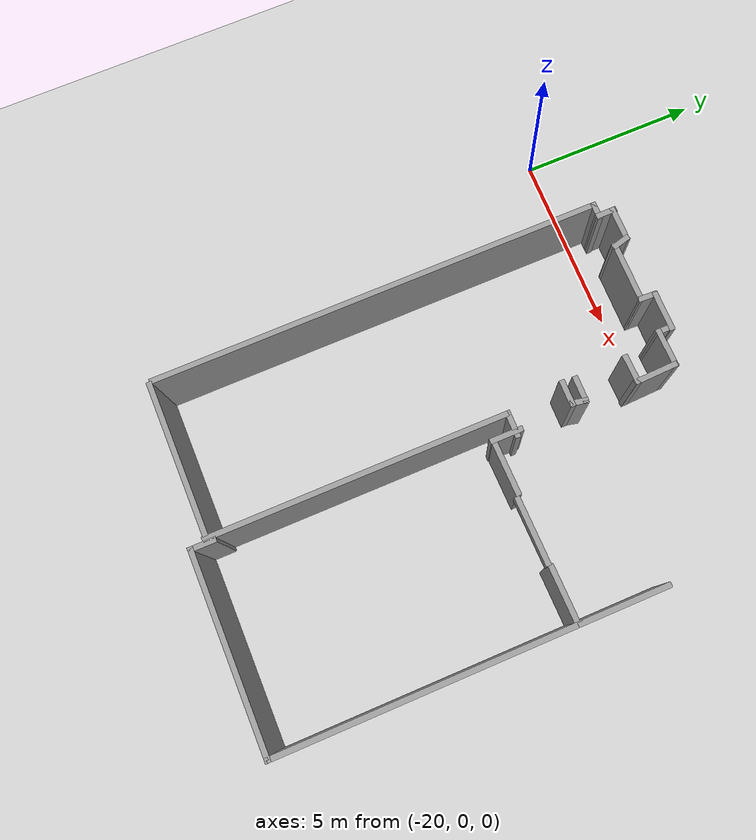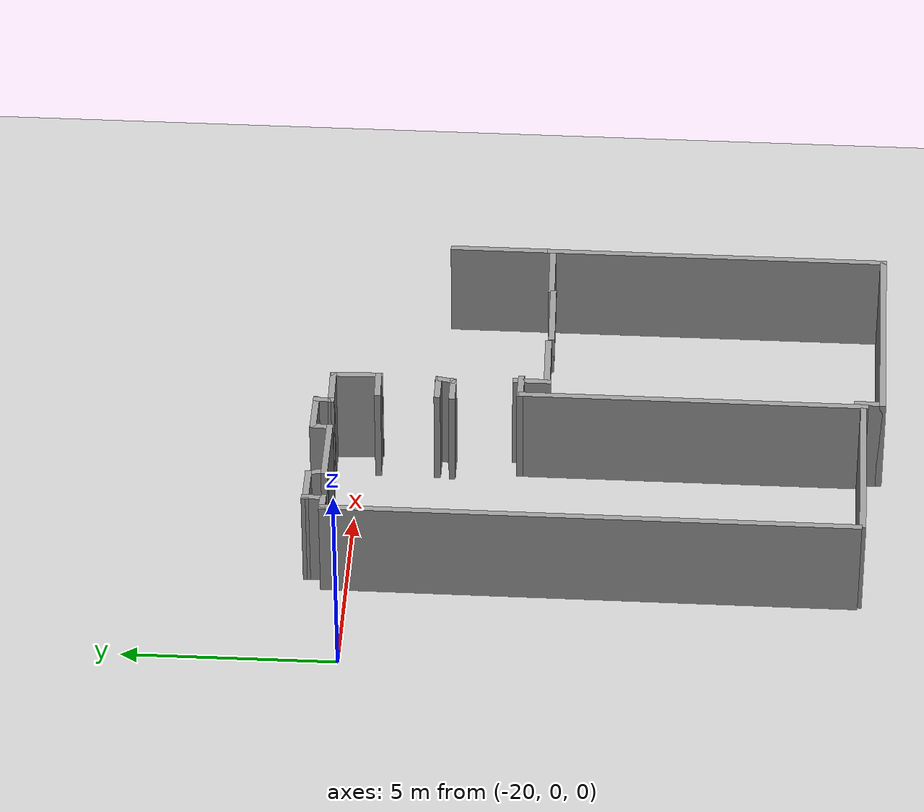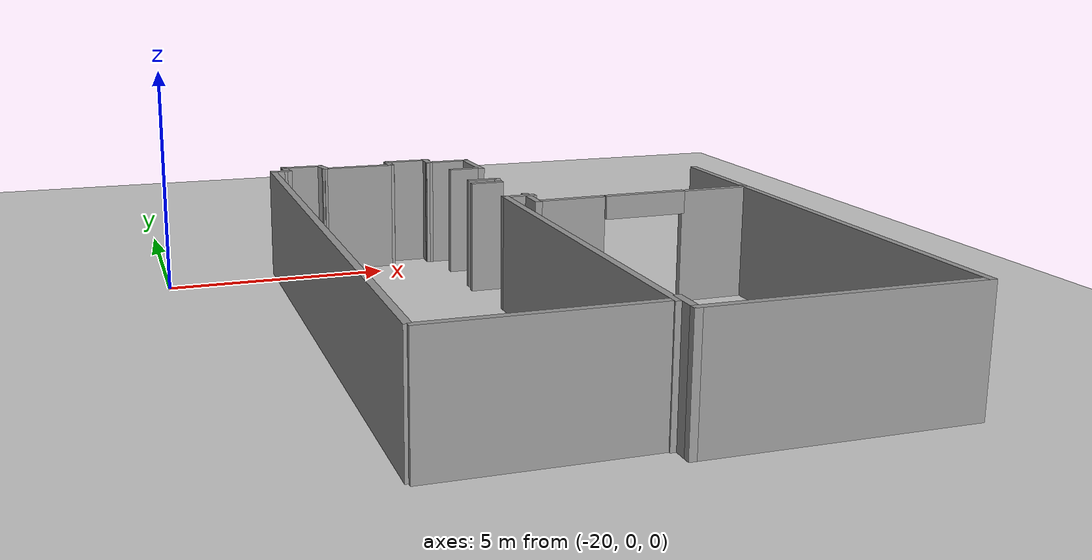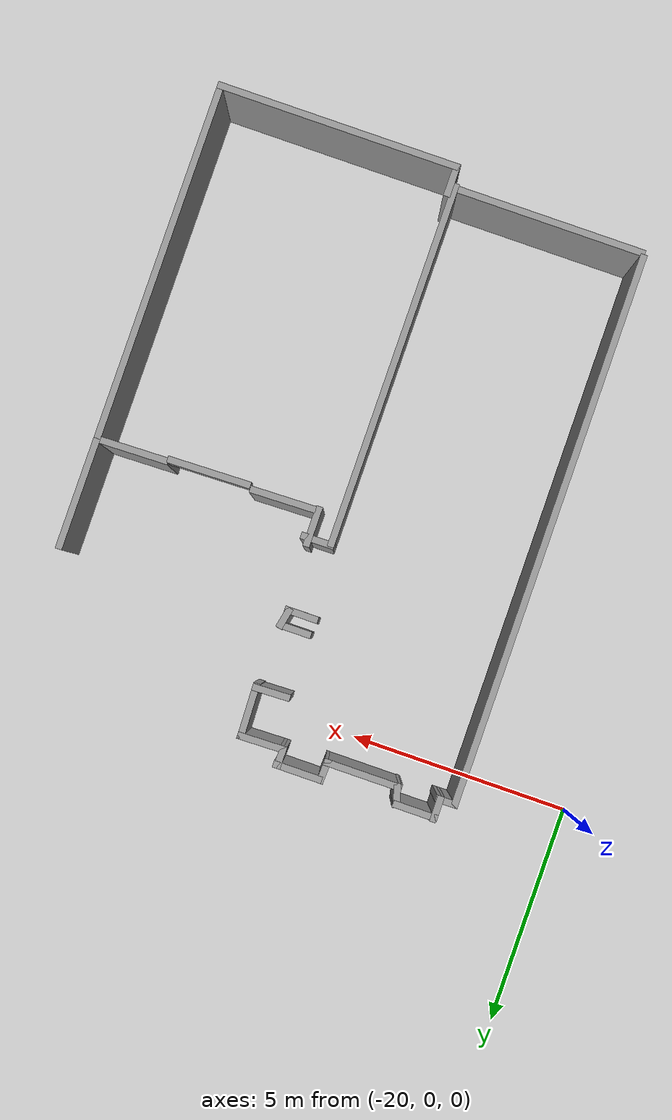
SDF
<sdf version="1.6">
 <world name="default">
  <model name="ground_plane">
   <static>1</static>
   <link name="link">
    <collision name="collision">
     <geometry><plane><normal>0 0 1</normal><size>100 100</size></plane></geometry>
     <surface>
      <contact><collide_bitmask>65535</collide_bitmask></contact>
      <friction><ode><mu>100</mu><mu2>50</mu2></ode></friction>
     </surface>
    </collision>
    <visual name="visual">
     <cast_shadows>0</cast_shadows>
     <geometry><plane><normal>0 0 1</normal><size>100 100</size></plane></geometry>
     <material>
      <script><uri>file://media/materials/scripts/gazebo.material</uri><name>Gazebo/Grey</name></script>
     </material>
    </visual>
   </link>
  </model>
  <model name="six_floor">
   <link name="Wall_0">
    <pose>-19.0386 -7.49444 0 0 -0 1.5708</pose>
    <visual name="Wall_0_Visual">
     <pose>0 0 1.25 0 -0 0</pose>
     <geometry><box><size>12.5 0.15 2.5</size></box></geometry>
     <material>
      <script><uri>file://media/materials/scripts/gazebo.material</uri><name>Gazebo/Grey</name></script>
      <ambient>1 1 1 1</ambient>
     </material>
     <meta><layer>0</layer></meta>
    </visual>
    <collision name="Wall_0_Collision">
     <pose>0 0 1.25 0 -0 0</pose>
     <geometry><box><size>12.5 0.15 2.5</size></box></geometry>
     <surface>
      <friction>
       <ode><mu>1</mu><mu2>1</mu2><fdir1>0 0 0</fdir1><slip1>0</slip1><slip2>0</slip2></ode>
       <torsional>
        <coefficient>1</coefficient>
        <patch_radius>0</patch_radius>
        <surface_radius>0</surface_radius>
        <use_patch_radius>1</use_patch_radius>
        <ode><slip>0</slip></ode>
       </torsional>
      </friction>
      <bounce><restitution_coefficient>0</restitution_coefficient><threshold>1e+06</threshold></bounce>
      <contact>
       <collide_without_contact>0</collide_without_contact>
       <collide_without_contact_bitmask>1</collide_without_contact_bitmask>
       <collide_bitmask>1</collide_bitmask>
       <ode>
        <soft_cfm>0</soft_cfm>
        <soft_erp>0.2</soft_erp>
        <kp>1e+13</kp>
        <kd>1</kd>
        <max_vel>0.01</max_vel>
        <min_depth>0</min_depth>
       </ode>
       <bullet>
        <split_impulse>1</split_impulse>
        <split_impulse_penetration_threshold>-0.01</split_impulse_penetration_threshold>
        <soft_cfm>0</soft_cfm>
        <soft_erp>0.2</soft_erp>
        <kp>1e+13</kp>
        <kd>1</kd>
       </bullet>
      </contact>
     </surface>
    </collision>
   </link>
   <link name="Wall_1">
    <pose>-18.8636 -1.31944 0 0 -0 0</pose>
    <visual name="Wall_1_Visual">
     <pose>0 0 1.25 0 -0 0</pose>
     <geometry><box><size>0.5 0.15 2.5</size></box></geometry>
     <material>
      <script><uri>file://media/materials/scripts/gazebo.material</uri><name>Gazebo/Grey</name></script>
      <ambient>1 1 1 1</ambient>
     </material>
     <meta><layer>0</layer></meta>
    </visual>
    <collision name="Wall_1_Collision">
     <pose>0 0 1.25 0 -0 0</pose>
     <geometry><box><size>0.5 0.15 2.5</size></box></geometry>
     <surface>
      <friction>
       <ode><mu>1</mu><mu2>1</mu2><fdir1>0 0 0</fdir1><slip1>0</slip1><slip2>0</slip2></ode>
       <torsional>
        <coefficient>1</coefficient>
        <patch_radius>0</patch_radius>
        <surface_radius>0</surface_radius>
        <use_patch_radius>1</use_patch_radius>
        <ode><slip>0</slip></ode>
       </torsional>
      </friction>
      <bounce><restitution_coefficient>0</restitution_coefficient><threshold>1e+06</threshold></bounce>
      <contact>
       <collide_without_contact>0</collide_without_contact>
       <collide_without_contact_bitmask>1</collide_without_contact_bitmask>
       <collide_bitmask>1</collide_bitmask>
       <ode>
        <soft_cfm>0</soft_cfm>
        <soft_erp>0.2</soft_erp>
        <kp>1e+13</kp>
        <kd>1</kd>
        <max_vel>0.01</max_vel>
        <min_depth>0</min_depth>
       </ode>
       <bullet>
        <split_impulse>1</split_impulse>
        <split_impulse_penetration_threshold>-0.01</split_impulse_penetration_threshold>
        <soft_cfm>0</soft_cfm>
        <soft_erp>0.2</soft_erp>
        <kp>1e+13</kp>
        <kd>1</kd>
       </bullet>
      </contact>
     </surface>
    </collision>
   </link>
   <link name="Wall_10">
    <pose>-14.2467 -1.76551 0 0 0 -1.53484</pose>
    <visual name="Wall_10_Visual">
     <pose>0 0 1.25 0 -0 0</pose>
     <geometry><box><size>1.22409 0.15 2.5</size></box></geometry>
     <material>
      <script><uri>file://media/materials/scripts/gazebo.material</uri><name>Gazebo/Grey</name></script>
      <ambient>1 1 1 1</ambient>
     </material>
     <meta><layer>0</layer></meta>
    </visual>
    <collision name="Wall_10_Collision">
     <pose>0 0 1.25 0 -0 0</pose>
     <geometry><box><size>1.22409 0.15 2.5</size></box></geometry>
     <surface>
      <friction>
       <ode><mu>1</mu><mu2>1</mu2><fdir1>0 0 0</fdir1><slip1>0</slip1><slip2>0</slip2></ode>
       <torsional>
        <coefficient>1</coefficient>
        <patch_radius>0</patch_radius>
        <surface_radius>0</surface_radius>
        <use_patch_radius>1</use_patch_radius>
        <ode><slip>0</slip></ode>
       </torsional>
      </friction>
      <bounce><restitution_coefficient>0</restitution_coefficient><threshold>1e+06</threshold></bounce>
      <contact>
       <collide_without_contact>0</collide_without_contact>
       <collide_without_contact_bitmask>1</collide_without_contact_bitmask>
       <collide_bitmask>1</collide_bitmask>
       <ode>
        <soft_cfm>0</soft_cfm>
        <soft_erp>0.2</soft_erp>
        <kp>1e+13</kp>
        <kd>1</kd>
        <max_vel>0.01</max_vel>
        <min_depth>0</min_depth>
       </ode>
       <bullet>
        <split_impulse>1</split_impulse>
        <split_impulse_penetration_threshold>-0.01</split_impulse_penetration_threshold>
        <soft_cfm>0</soft_cfm>
        <soft_erp>0.2</soft_erp>
        <kp>1e+13</kp>
        <kd>1</kd>
       </bullet>
      </contact>
     </surface>
    </collision>
   </link>
   <link name="Wall_12">
    <pose>-14.5731 -2.29078 0 0 0 -3.10853</pose>
    <visual name="Wall_12_Visual">
     <pose>0 0 1.25 0 -0 0</pose>
     <geometry><box><size>0.841859 0.15 2.5</size></box></geometry>
     <material>
      <script><uri>file://media/materials/scripts/gazebo.material</uri><name>Gazebo/Grey</name></script>
      <ambient>1 1 1 1</ambient>
     </material>
     <meta><layer>0</layer></meta>
    </visual>
    <collision name="Wall_12_Collision">
     <pose>0 0 1.25 0 -0 0</pose>
     <geometry><box><size>0.841859 0.15 2.5</size></box></geometry>
     <surface>
      <friction>
       <ode><mu>1</mu><mu2>1</mu2><fdir1>0 0 0</fdir1><slip1>0</slip1><slip2>0</slip2></ode>
       <torsional>
        <coefficient>1</coefficient>
        <patch_radius>0</patch_radius>
        <surface_radius>0</surface_radius>
        <use_patch_radius>1</use_patch_radius>
        <ode><slip>0</slip></ode>
       </torsional>
      </friction>
      <bounce><restitution_coefficient>0</restitution_coefficient><threshold>1e+06</threshold></bounce>
      <contact>
       <collide_without_contact>0</collide_without_contact>
       <collide_without_contact_bitmask>1</collide_without_contact_bitmask>
       <collide_bitmask>1</collide_bitmask>
       <ode>
        <soft_cfm>0</soft_cfm>
        <soft_erp>0.2</soft_erp>
        <kp>1e+13</kp>
        <kd>1</kd>
        <max_vel>0.01</max_vel>
        <min_depth>0</min_depth>
       </ode>
       <bullet>
        <split_impulse>1</split_impulse>
        <split_impulse_penetration_threshold>-0.01</split_impulse_penetration_threshold>
        <soft_cfm>0</soft_cfm>
        <soft_erp>0.2</soft_erp>
        <kp>1e+13</kp>
        <kd>1</kd>
       </bullet>
      </contact>
     </surface>
    </collision>
   </link>
   <link name="Wall_14">
    <pose>-14.3197 -3.87944 0 0 0 -1.77692</pose>
    <visual name="Wall_14_Visual">
     <pose>0 0 1.25 0 -0 0</pose>
     <geometry><box><size>0.489902 0.15 2.5</size></box></geometry>
     <material>
      <script><uri>file://media/materials/scripts/gazebo.material</uri><name>Gazebo/Grey</name></script>
      <ambient>1 1 1 1</ambient>
     </material>
     <meta><layer>0</layer></meta>
    </visual>
    <collision name="Wall_14_Collision">
     <pose>0 0 1.25 0 -0 0</pose>
     <geometry><box><size>0.489902 0.15 2.5</size></box></geometry>
     <surface>
      <friction>
       <ode><mu>1</mu><mu2>1</mu2><fdir1>0 0 0</fdir1><slip1>0</slip1><slip2>0</slip2></ode>
       <torsional>
        <coefficient>1</coefficient>
        <patch_radius>0</patch_radius>
        <surface_radius>0</surface_radius>
        <use_patch_radius>1</use_patch_radius>
        <ode><slip>0</slip></ode>
       </torsional>
      </friction>
      <bounce><restitution_coefficient>0</restitution_coefficient><threshold>1e+06</threshold></bounce>
      <contact>
       <collide_without_contact>0</collide_without_contact>
       <collide_without_contact_bitmask>1</collide_without_contact_bitmask>
       <collide_bitmask>1</collide_bitmask>
       <ode>
        <soft_cfm>0</soft_cfm>
        <soft_erp>0.2</soft_erp>
        <kp>1e+13</kp>
        <kd>1</kd>
        <max_vel>0.01</max_vel>
        <min_depth>0</min_depth>
       </ode>
       <bullet>
        <split_impulse>1</split_impulse>
        <split_impulse_penetration_threshold>-0.01</split_impulse_penetration_threshold>
        <soft_cfm>0</soft_cfm>
        <soft_erp>0.2</soft_erp>
        <kp>1e+13</kp>
        <kd>1</kd>
       </bullet>
      </contact>
     </surface>
    </collision>
   </link>
   <link name="Wall_145">
    <pose>-9.28262 -10.1662 0 0 0 -1.5708</pose>
    <visual name="Wall_145_Visual">
     <pose>0 0 1.25 0 -0 0</pose>
     <geometry><box><size>8.25 0.15 2.5</size></box></geometry>
     <material>
      <script><uri>file://media/materials/scripts/gazebo.material</uri><name>Gazebo/Grey</name></script>
      <ambient>1 1 1 1</ambient>
     </material>
     <meta><layer>0</layer></meta>
    </visual>
    <collision name="Wall_145_Collision">
     <pose>0 0 1.25 0 -0 0</pose>
     <geometry><box><size>8.25 0.15 2.5</size></box></geometry>
     <surface>
      <friction>
       <ode><mu>1</mu><mu2>1</mu2><fdir1>0 0 0</fdir1><slip1>0</slip1><slip2>0</slip2></ode>
       <torsional>
        <coefficient>1</coefficient>
        <patch_radius>0</patch_radius>
        <surface_radius>0</surface_radius>
        <use_patch_radius>1</use_patch_radius>
        <ode><slip>0</slip></ode>
       </torsional>
      </friction>
      <bounce><restitution_coefficient>0</restitution_coefficient><threshold>1e+06</threshold></bounce>
      <contact>
       <collide_without_contact>0</collide_without_contact>
       <collide_without_contact_bitmask>1</collide_without_contact_bitmask>
       <collide_bitmask>1</collide_bitmask>
       <ode>
        <soft_cfm>0</soft_cfm>
        <soft_erp>0.2</soft_erp>
        <kp>1e+13</kp>
        <kd>1</kd>
        <max_vel>0.01</max_vel>
        <min_depth>0</min_depth>
       </ode>
       <bullet>
        <split_impulse>1</split_impulse>
        <split_impulse_penetration_threshold>-0.01</split_impulse_penetration_threshold>
        <soft_cfm>0</soft_cfm>
        <soft_erp>0.2</soft_erp>
        <kp>1e+13</kp>
        <kd>1</kd>
       </bullet>
      </contact>
     </surface>
    </collision>
   </link>
   <link name="Wall_146">
    <pose>-11.9576 -14.2162 0 0 -0 3.14159</pose>
    <visual name="Wall_146_Visual">
     <pose>0 0 1.25 0 -0 0</pose>
     <geometry><box><size>5.5 0.15 2.5</size></box></geometry>
     <material>
      <script><uri>file://media/materials/scripts/gazebo.material</uri><name>Gazebo/Grey</name></script>
      <ambient>1 1 1 1</ambient>
     </material>
     <meta><layer>0</layer></meta>
    </visual>
    <collision name="Wall_146_Collision">
     <pose>0 0 1.25 0 -0 0</pose>
     <geometry><box><size>5.5 0.15 2.5</size></box></geometry>
     <surface>
      <friction>
       <ode><mu>1</mu><mu2>1</mu2><fdir1>0 0 0</fdir1><slip1>0</slip1><slip2>0</slip2></ode>
       <torsional>
        <coefficient>1</coefficient>
        <patch_radius>0</patch_radius>
        <surface_radius>0</surface_radius>
        <use_patch_radius>1</use_patch_radius>
        <ode><slip>0</slip></ode>
       </torsional>
      </friction>
      <bounce><restitution_coefficient>0</restitution_coefficient><threshold>1e+06</threshold></bounce>
      <contact>
       <collide_without_contact>0</collide_without_contact>
       <collide_without_contact_bitmask>1</collide_without_contact_bitmask>
       <collide_bitmask>1</collide_bitmask>
       <ode>
        <soft_cfm>0</soft_cfm>
        <soft_erp>0.2</soft_erp>
        <kp>1e+13</kp>
        <kd>1</kd>
        <max_vel>0.01</max_vel>
        <min_depth>0</min_depth>
       </ode>
       <bullet>
        <split_impulse>1</split_impulse>
        <split_impulse_penetration_threshold>-0.01</split_impulse_penetration_threshold>
        <soft_cfm>0</soft_cfm>
        <soft_erp>0.2</soft_erp>
        <kp>1e+13</kp>
        <kd>1</kd>
       </bullet>
      </contact>
     </surface>
    </collision>
   </link>
   <link name="Wall_147">
    <pose>-14.6326 -13.9162 0 0 -0 1.5708</pose>
    <visual name="Wall_147_Visual">
     <pose>0 0 1.25 0 -0 0</pose>
     <geometry><box><size>0.75 0.15 2.5</size></box></geometry>
     <material>
      <script><uri>file://media/materials/scripts/gazebo.material</uri><name>Gazebo/Grey</name></script>
      <ambient>1 1 1 1</ambient>
     </material>
     <meta><layer>0</layer></meta>
    </visual>
    <collision name="Wall_147_Collision">
     <pose>0 0 1.25 0 -0 0</pose>
     <geometry><box><size>0.75 0.15 2.5</size></box></geometry>
     <surface>
      <friction>
       <ode><mu>1</mu><mu2>1</mu2><fdir1>0 0 0</fdir1><slip1>0</slip1><slip2>0</slip2></ode>
       <torsional>
        <coefficient>1</coefficient>
        <patch_radius>0</patch_radius>
        <surface_radius>0</surface_radius>
        <use_patch_radius>1</use_patch_radius>
        <ode><slip>0</slip></ode>
       </torsional>
      </friction>
      <bounce><restitution_coefficient>0</restitution_coefficient><threshold>1e+06</threshold></bounce>
      <contact>
       <collide_without_contact>0</collide_without_contact>
       <collide_without_contact_bitmask>1</collide_without_contact_bitmask>
       <collide_bitmask>1</collide_bitmask>
       <ode>
        <soft_cfm>0</soft_cfm>
        <soft_erp>0.2</soft_erp>
        <kp>1e+13</kp>
        <kd>1</kd>
        <max_vel>0.01</max_vel>
        <min_depth>0</min_depth>
       </ode>
       <bullet>
        <split_impulse>1</split_impulse>
        <split_impulse_penetration_threshold>-0.01</split_impulse_penetration_threshold>
        <soft_cfm>0</soft_cfm>
        <soft_erp>0.2</soft_erp>
        <kp>1e+13</kp>
        <kd>1</kd>
       </bullet>
      </contact>
     </surface>
    </collision>
   </link>
   <link name="Wall_16">
    <pose>-14.6022 -3.71309 0 0 -0 0</pose>
    <visual name="Wall_16_Visual">
     <pose>0 0 1.25 0 -0 0</pose>
     <geometry><box><size>0.75 0.15 2.5</size></box></geometry>
     <material>
      <script><uri>file://media/materials/scripts/gazebo.material</uri><name>Gazebo/Grey</name></script>
      <ambient>1 1 1 1</ambient>
     </material>
     <meta><layer>0</layer></meta>
    </visual>
    <collision name="Wall_16_Collision">
     <pose>0 0 1.25 0 -0 0</pose>
     <geometry><box><size>0.75 0.15 2.5</size></box></geometry>
     <surface>
      <friction>
       <ode><mu>1</mu><mu2>1</mu2><fdir1>0 0 0</fdir1><slip1>0</slip1><slip2>0</slip2></ode>
       <torsional>
        <coefficient>1</coefficient>
        <patch_radius>0</patch_radius>
        <surface_radius>0</surface_radius>
        <use_patch_radius>1</use_patch_radius>
        <ode><slip>0</slip></ode>
       </torsional>
      </friction>
      <bounce><restitution_coefficient>0</restitution_coefficient><threshold>1e+06</threshold></bounce>
      <contact>
       <collide_without_contact>0</collide_without_contact>
       <collide_without_contact_bitmask>1</collide_without_contact_bitmask>
       <collide_bitmask>1</collide_bitmask>
       <ode>
        <soft_cfm>0</soft_cfm>
        <soft_erp>0.2</soft_erp>
        <kp>1e+13</kp>
        <kd>1</kd>
        <max_vel>0.01</max_vel>
        <min_depth>0</min_depth>
       </ode>
       <bullet>
        <split_impulse>1</split_impulse>
        <split_impulse_penetration_threshold>-0.01</split_impulse_penetration_threshold>
        <soft_cfm>0</soft_cfm>
        <soft_erp>0.2</soft_erp>
        <kp>1e+13</kp>
        <kd>1</kd>
       </bullet>
      </contact>
     </surface>
    </collision>
   </link>
   <link name="Wall_18">
    <pose>-14.6372 -4.06309 0 0 -0 0</pose>
    <visual name="Wall_18_Visual">
     <pose>0 0 1.25 0 -0 0</pose>
     <geometry><box><size>0.75 0.15 2.5</size></box></geometry>
     <material>
      <script><uri>file://media/materials/scripts/gazebo.material</uri><name>Gazebo/Grey</name></script>
      <ambient>1 1 1 1</ambient>
     </material>
     <meta><layer>0</layer></meta>
    </visual>
    <collision name="Wall_18_Collision">
     <pose>0 0 1.25 0 -0 0</pose>
     <geometry><box><size>0.75 0.15 2.5</size></box></geometry>
     <surface>
      <friction>
       <ode><mu>1</mu><mu2>1</mu2><fdir1>0 0 0</fdir1><slip1>0</slip1><slip2>0</slip2></ode>
       <torsional>
        <coefficient>1</coefficient>
        <patch_radius>0</patch_radius>
        <surface_radius>0</surface_radius>
        <use_patch_radius>1</use_patch_radius>
        <ode><slip>0</slip></ode>
       </torsional>
      </friction>
      <bounce><restitution_coefficient>0</restitution_coefficient><threshold>1e+06</threshold></bounce>
      <contact>
       <collide_without_contact>0</collide_without_contact>
       <collide_without_contact_bitmask>1</collide_without_contact_bitmask>
       <collide_bitmask>1</collide_bitmask>
       <ode>
        <soft_cfm>0</soft_cfm>
        <soft_erp>0.2</soft_erp>
        <kp>1e+13</kp>
        <kd>1</kd>
        <max_vel>0.01</max_vel>
        <min_depth>0</min_depth>
       </ode>
       <bullet>
        <split_impulse>1</split_impulse>
        <split_impulse_penetration_threshold>-0.01</split_impulse_penetration_threshold>
        <soft_cfm>0</soft_cfm>
        <soft_erp>0.2</soft_erp>
        <kp>1e+13</kp>
        <kd>1</kd>
       </bullet>
      </contact>
     </surface>
    </collision>
   </link>
   <link name="Wall_2">
    <pose>-18.7118 -1.10466 0 0 -0 1.57237</pose>
    <visual name="Wall_2_Visual">
     <pose>0 0 1.25 0 -0 0</pose>
     <geometry><box><size>0.579555 0.15 2.5</size></box></geometry>
     <material>
      <script><uri>file://media/materials/scripts/gazebo.material</uri><name>Gazebo/Grey</name></script>
      <ambient>1 1 1 1</ambient>
     </material>
     <meta><layer>0</layer></meta>
    </visual>
    <collision name="Wall_2_Collision">
     <pose>0 0 1.25 0 -0 0</pose>
     <geometry><box><size>0.579555 0.15 2.5</size></box></geometry>
     <surface>
      <friction>
       <ode><mu>1</mu><mu2>1</mu2><fdir1>0 0 0</fdir1><slip1>0</slip1><slip2>0</slip2></ode>
       <torsional>
        <coefficient>1</coefficient>
        <patch_radius>0</patch_radius>
        <surface_radius>0</surface_radius>
        <use_patch_radius>1</use_patch_radius>
        <ode><slip>0</slip></ode>
       </torsional>
      </friction>
      <bounce><restitution_coefficient>0</restitution_coefficient><threshold>1e+06</threshold></bounce>
      <contact>
       <collide_without_contact>0</collide_without_contact>
       <collide_without_contact_bitmask>1</collide_without_contact_bitmask>
       <collide_bitmask>1</collide_bitmask>
       <ode>
        <soft_cfm>0</soft_cfm>
        <soft_erp>0.2</soft_erp>
        <kp>1e+13</kp>
        <kd>1</kd>
        <max_vel>0.01</max_vel>
        <min_depth>0</min_depth>
       </ode>
       <bullet>
        <split_impulse>1</split_impulse>
        <split_impulse_penetration_threshold>-0.01</split_impulse_penetration_threshold>
        <soft_cfm>0</soft_cfm>
        <soft_erp>0.2</soft_erp>
        <kp>1e+13</kp>
        <kd>1</kd>
       </bullet>
      </contact>
     </surface>
    </collision>
   </link>
   <link name="Wall_21">
    <pose>-14.2482 -5.9183 0 0 0 -1.5708</pose>
    <visual name="Wall_21_Visual">
     <pose>0 0 1.25 0 -0 0</pose>
     <geometry><box><size>0.908696 0.15 2.5</size></box></geometry>
     <material>
      <script><uri>file://media/materials/scripts/gazebo.material</uri><name>Gazebo/Grey</name></script>
      <ambient>1 1 1 1</ambient>
     </material>
     <meta><layer>0</layer></meta>
    </visual>
    <collision name="Wall_21_Collision">
     <pose>0 0 1.25 0 -0 0</pose>
     <geometry><box><size>0.908696 0.15 2.5</size></box></geometry>
     <surface>
      <friction>
       <ode><mu>1</mu><mu2>1</mu2><fdir1>0 0 0</fdir1><slip1>0</slip1><slip2>0</slip2></ode>
       <torsional>
        <coefficient>1</coefficient>
        <patch_radius>0</patch_radius>
        <surface_radius>0</surface_radius>
        <use_patch_radius>1</use_patch_radius>
        <ode><slip>0</slip></ode>
       </torsional>
      </friction>
      <bounce><restitution_coefficient>0</restitution_coefficient><threshold>1e+06</threshold></bounce>
      <contact>
       <collide_without_contact>0</collide_without_contact>
       <collide_without_contact_bitmask>1</collide_without_contact_bitmask>
       <collide_bitmask>1</collide_bitmask>
       <ode>
        <soft_cfm>0</soft_cfm>
        <soft_erp>0.2</soft_erp>
        <kp>1e+13</kp>
        <kd>1</kd>
        <max_vel>0.01</max_vel>
        <min_depth>0</min_depth>
       </ode>
       <bullet>
        <split_impulse>1</split_impulse>
        <split_impulse_penetration_threshold>-0.01</split_impulse_penetration_threshold>
        <soft_cfm>0</soft_cfm>
        <soft_erp>0.2</soft_erp>
        <kp>1e+13</kp>
        <kd>1</kd>
       </bullet>
      </contact>
     </surface>
    </collision>
   </link>
   <link name="Wall_23">
    <pose>-14.4453 -5.66602 0 0 -0 3.14159</pose>
    <visual name="Wall_23_Visual">
     <pose>0 0 1.25 0 -0 0</pose>
     <geometry><box><size>0.75 0.15 2.5</size></box></geometry>
     <material>
      <script><uri>file://media/materials/scripts/gazebo.material</uri><name>Gazebo/Grey</name></script>
      <ambient>1 1 1 1</ambient>
     </material>
     <meta><layer>0</layer></meta>
    </visual>
    <collision name="Wall_23_Collision">
     <pose>0 0 1.25 0 -0 0</pose>
     <geometry><box><size>0.75 0.15 2.5</size></box></geometry>
     <surface>
      <friction>
       <ode><mu>1</mu><mu2>1</mu2><fdir1>0 0 0</fdir1><slip1>0</slip1><slip2>0</slip2></ode>
       <torsional>
        <coefficient>1</coefficient>
        <patch_radius>0</patch_radius>
        <surface_radius>0</surface_radius>
        <use_patch_radius>1</use_patch_radius>
        <ode><slip>0</slip></ode>
       </torsional>
      </friction>
      <bounce><restitution_coefficient>0</restitution_coefficient><threshold>1e+06</threshold></bounce>
      <contact>
       <collide_without_contact>0</collide_without_contact>
       <collide_without_contact_bitmask>1</collide_without_contact_bitmask>
       <collide_bitmask>1</collide_bitmask>
       <ode>
        <soft_cfm>0</soft_cfm>
        <soft_erp>0.2</soft_erp>
        <kp>1e+13</kp>
        <kd>1</kd>
        <max_vel>0.01</max_vel>
        <min_depth>0</min_depth>
       </ode>
       <bullet>
        <split_impulse>1</split_impulse>
        <split_impulse_penetration_threshold>-0.01</split_impulse_penetration_threshold>
        <soft_cfm>0</soft_cfm>
        <soft_erp>0.2</soft_erp>
        <kp>1e+13</kp>
        <kd>1</kd>
       </bullet>
      </contact>
     </surface>
    </collision>
   </link>
   <link name="Wall_28">
    <pose>-14.7453 -9.7508 0 0 0 -1.5708</pose>
    <visual name="Wall_28_Visual">
     <pose>0 0 1.25 0 -0 0</pose>
     <geometry><box><size>8.25 0.15 2.5</size></box></geometry>
     <material>
      <script><uri>file://media/materials/scripts/gazebo.material</uri><name>Gazebo/Grey</name></script>
      <ambient>1 1 1 1</ambient>
     </material>
     <meta><layer>0</layer></meta>
    </visual>
    <collision name="Wall_28_Collision">
     <pose>0 0 1.25 0 -0 0</pose>
     <geometry><box><size>8.25 0.15 2.5</size></box></geometry>
     <surface>
      <friction>
       <ode><mu>1</mu><mu2>1</mu2><fdir1>0 0 0</fdir1><slip1>0</slip1><slip2>0</slip2></ode>
       <torsional>
        <coefficient>1</coefficient>
        <patch_radius>0</patch_radius>
        <surface_radius>0</surface_radius>
        <use_patch_radius>1</use_patch_radius>
        <ode><slip>0</slip></ode>
       </torsional>
      </friction>
      <bounce><restitution_coefficient>0</restitution_coefficient><threshold>1e+06</threshold></bounce>
      <contact>
       <collide_without_contact>0</collide_without_contact>
       <collide_without_contact_bitmask>1</collide_without_contact_bitmask>
       <collide_bitmask>1</collide_bitmask>
       <ode>
        <soft_cfm>0</soft_cfm>
        <soft_erp>0.2</soft_erp>
        <kp>1e+13</kp>
        <kd>1</kd>
        <max_vel>0.01</max_vel>
        <min_depth>0</min_depth>
       </ode>
       <bullet>
        <split_impulse>1</split_impulse>
        <split_impulse_penetration_threshold>-0.01</split_impulse_penetration_threshold>
        <soft_cfm>0</soft_cfm>
        <soft_erp>0.2</soft_erp>
        <kp>1e+13</kp>
        <kd>1</kd>
       </bullet>
      </contact>
     </surface>
    </collision>
   </link>
   <link name="Wall_3">
    <pose>-18.2871 -0.912757 0 0 -0 0</pose>
    <visual name="Wall_3_Visual">
     <pose>0 0 1.25 0 -0 0</pose>
     <geometry><box><size>1 0.15 2.5</size></box></geometry>
     <material>
      <script><uri>file://media/materials/scripts/gazebo.material</uri><name>Gazebo/Grey</name></script>
      <ambient>1 1 1 1</ambient>
     </material>
     <meta><layer>0</layer></meta>
    </visual>
    <collision name="Wall_3_Collision">
     <pose>0 0 1.25 0 -0 0</pose>
     <geometry><box><size>1 0.15 2.5</size></box></geometry>
     <surface>
      <friction>
       <ode><mu>1</mu><mu2>1</mu2><fdir1>0 0 0</fdir1><slip1>0</slip1><slip2>0</slip2></ode>
       <torsional>
        <coefficient>1</coefficient>
        <patch_radius>0</patch_radius>
        <surface_radius>0</surface_radius>
        <use_patch_radius>1</use_patch_radius>
        <ode><slip>0</slip></ode>
       </torsional>
      </friction>
      <bounce><restitution_coefficient>0</restitution_coefficient><threshold>1e+06</threshold></bounce>
      <contact>
       <collide_without_contact>0</collide_without_contact>
       <collide_without_contact_bitmask>1</collide_without_contact_bitmask>
       <collide_bitmask>1</collide_bitmask>
       <ode>
        <soft_cfm>0</soft_cfm>
        <soft_erp>0.2</soft_erp>
        <kp>1e+13</kp>
        <kd>1</kd>
        <max_vel>0.01</max_vel>
        <min_depth>0</min_depth>
       </ode>
       <bullet>
        <split_impulse>1</split_impulse>
        <split_impulse_penetration_threshold>-0.01</split_impulse_penetration_threshold>
        <soft_cfm>0</soft_cfm>
        <soft_erp>0.2</soft_erp>
        <kp>1e+13</kp>
        <kd>1</kd>
       </bullet>
      </contact>
     </surface>
    </collision>
   </link>
   <link name="Wall_31">
    <pose>-16.9248 -13.7645 0 0 -0 3.14159</pose>
    <visual name="Wall_31_Visual">
     <pose>0 0 1.25 0 -0 0</pose>
     <geometry><box><size>4.25 0.15 2.5</size></box></geometry>
     <material>
      <script><uri>file://media/materials/scripts/gazebo.material</uri><name>Gazebo/Grey</name></script>
      <ambient>1 1 1 1</ambient>
     </material>
     <meta><layer>0</layer></meta>
    </visual>
    <collision name="Wall_31_Collision">
     <pose>0 0 1.25 0 -0 0</pose>
     <geometry><box><size>4.25 0.15 2.5</size></box></geometry>
     <surface>
      <friction>
       <ode><mu>1</mu><mu2>1</mu2><fdir1>0 0 0</fdir1><slip1>0</slip1><slip2>0</slip2></ode>
       <torsional>
        <coefficient>1</coefficient>
        <patch_radius>0</patch_radius>
        <surface_radius>0</surface_radius>
        <use_patch_radius>1</use_patch_radius>
        <ode><slip>0</slip></ode>
       </torsional>
      </friction>
      <bounce><restitution_coefficient>0</restitution_coefficient><threshold>1e+06</threshold></bounce>
      <contact>
       <collide_without_contact>0</collide_without_contact>
       <collide_without_contact_bitmask>1</collide_without_contact_bitmask>
       <collide_bitmask>1</collide_bitmask>
       <ode>
        <soft_cfm>0</soft_cfm>
        <soft_erp>0.2</soft_erp>
        <kp>1e+13</kp>
        <kd>1</kd>
        <max_vel>0.01</max_vel>
        <min_depth>0</min_depth>
       </ode>
       <bullet>
        <split_impulse>1</split_impulse>
        <split_impulse_penetration_threshold>-0.01</split_impulse_penetration_threshold>
        <soft_cfm>0</soft_cfm>
        <soft_erp>0.2</soft_erp>
        <kp>1e+13</kp>
        <kd>1</kd>
       </bullet>
      </contact>
     </surface>
    </collision>
   </link>
   <link name="Wall_4">
    <pose>-17.8138 -1.09366 0 0 0 -1.30992</pose>
    <visual name="Wall_4_Visual">
     <pose>0 0 1.25 0 -0 0</pose>
     <geometry><box><size>0.524468 0.15 2.5</size></box></geometry>
     <material>
      <script><uri>file://media/materials/scripts/gazebo.material</uri><name>Gazebo/Grey</name></script>
      <ambient>1 1 1 1</ambient>
     </material>
     <meta><layer>0</layer></meta>
    </visual>
    <collision name="Wall_4_Collision">
     <pose>0 0 1.25 0 -0 0</pose>
     <geometry><box><size>0.524468 0.15 2.5</size></box></geometry>
     <surface>
      <friction>
       <ode><mu>1</mu><mu2>1</mu2><fdir1>0 0 0</fdir1><slip1>0</slip1><slip2>0</slip2></ode>
       <torsional>
        <coefficient>1</coefficient>
        <patch_radius>0</patch_radius>
        <surface_radius>0</surface_radius>
        <use_patch_radius>1</use_patch_radius>
        <ode><slip>0</slip></ode>
       </torsional>
      </friction>
      <bounce><restitution_coefficient>0</restitution_coefficient><threshold>1e+06</threshold></bounce>
      <contact>
       <collide_without_contact>0</collide_without_contact>
       <collide_without_contact_bitmask>1</collide_without_contact_bitmask>
       <collide_bitmask>1</collide_bitmask>
       <ode>
        <soft_cfm>0</soft_cfm>
        <soft_erp>0.2</soft_erp>
        <kp>1e+13</kp>
        <kd>1</kd>
        <max_vel>0.01</max_vel>
        <min_depth>0</min_depth>
       </ode>
       <bullet>
        <split_impulse>1</split_impulse>
        <split_impulse_penetration_threshold>-0.01</split_impulse_penetration_threshold>
        <soft_cfm>0</soft_cfm>
        <soft_erp>0.2</soft_erp>
        <kp>1e+13</kp>
        <kd>1</kd>
       </bullet>
      </contact>
     </surface>
    </collision>
   </link>
   <link name="Wall_5">
    <pose>-16.9884 -1.27455 0 0 -0 0</pose>
    <visual name="Wall_5_Visual">
     <pose>0 0 1.25 0 -0 0</pose>
     <geometry><box><size>1.75 0.15 2.5</size></box></geometry>
     <material>
      <script><uri>file://media/materials/scripts/gazebo.material</uri><name>Gazebo/Grey</name></script>
      <ambient>1 1 1 1</ambient>
     </material>
     <meta><layer>0</layer></meta>
    </visual>
    <collision name="Wall_5_Collision">
     <pose>0 0 1.25 0 -0 0</pose>
     <geometry><box><size>1.75 0.15 2.5</size></box></geometry>
     <surface>
      <friction>
       <ode><mu>1</mu><mu2>1</mu2><fdir1>0 0 0</fdir1><slip1>0</slip1><slip2>0</slip2></ode>
       <torsional>
        <coefficient>1</coefficient>
        <patch_radius>0</patch_radius>
        <surface_radius>0</surface_radius>
        <use_patch_radius>1</use_patch_radius>
        <ode><slip>0</slip></ode>
       </torsional>
      </friction>
      <bounce><restitution_coefficient>0</restitution_coefficient><threshold>1e+06</threshold></bounce>
      <contact>
       <collide_without_contact>0</collide_without_contact>
       <collide_without_contact_bitmask>1</collide_without_contact_bitmask>
       <collide_bitmask>1</collide_bitmask>
       <ode>
        <soft_cfm>0</soft_cfm>
        <soft_erp>0.2</soft_erp>
        <kp>1e+13</kp>
        <kd>1</kd>
        <max_vel>0.01</max_vel>
        <min_depth>0</min_depth>
       </ode>
       <bullet>
        <split_impulse>1</split_impulse>
        <split_impulse_penetration_threshold>-0.01</split_impulse_penetration_threshold>
        <soft_cfm>0</soft_cfm>
        <soft_erp>0.2</soft_erp>
        <kp>1e+13</kp>
        <kd>1</kd>
       </bullet>
      </contact>
     </surface>
    </collision>
   </link>
   <link name="Wall_6">
    <pose>-16.1801 -1.07668 0 0 -0 1.52891</pose>
    <visual name="Wall_6_Visual">
     <pose>0 0 1.25 0 -0 0</pose>
     <geometry><box><size>0.546088 0.15 2.5</size></box></geometry>
     <material>
      <script><uri>file://media/materials/scripts/gazebo.material</uri><name>Gazebo/Grey</name></script>
      <ambient>1 1 1 1</ambient>
     </material>
     <meta><layer>0</layer></meta>
    </visual>
    <collision name="Wall_6_Collision">
     <pose>0 0 1.25 0 -0 0</pose>
     <geometry><box><size>0.546088 0.15 2.5</size></box></geometry>
     <surface>
      <friction>
       <ode><mu>1</mu><mu2>1</mu2><fdir1>0 0 0</fdir1><slip1>0</slip1><slip2>0</slip2></ode>
       <torsional>
        <coefficient>1</coefficient>
        <patch_radius>0</patch_radius>
        <surface_radius>0</surface_radius>
        <use_patch_radius>1</use_patch_radius>
        <ode><slip>0</slip></ode>
       </torsional>
      </friction>
      <bounce><restitution_coefficient>0</restitution_coefficient><threshold>1e+06</threshold></bounce>
      <contact>
       <collide_without_contact>0</collide_without_contact>
       <collide_without_contact_bitmask>1</collide_without_contact_bitmask>
       <collide_bitmask>1</collide_bitmask>
       <ode>
        <soft_cfm>0</soft_cfm>
        <soft_erp>0.2</soft_erp>
        <kp>1e+13</kp>
        <kd>1</kd>
        <max_vel>0.01</max_vel>
        <min_depth>0</min_depth>
       </ode>
       <bullet>
        <split_impulse>1</split_impulse>
        <split_impulse_penetration_threshold>-0.01</split_impulse_penetration_threshold>
        <soft_cfm>0</soft_cfm>
        <soft_erp>0.2</soft_erp>
        <kp>1e+13</kp>
        <kd>1</kd>
       </bullet>
      </contact>
     </surface>
    </collision>
   </link>
   <link name="Wall_7">
    <pose>-15.6668 -0.878814 0 0 -0 0</pose>
    <visual name="Wall_7_Visual">
     <pose>0 0 1.25 0 -0 0</pose>
     <geometry><box><size>1.11435 0.15 2.5</size></box></geometry>
     <material>
      <script><uri>file://media/materials/scripts/gazebo.material</uri><name>Gazebo/Grey</name></script>
      <ambient>1 1 1 1</ambient>
     </material>
     <meta><layer>0</layer></meta>
    </visual>
    <collision name="Wall_7_Collision">
     <pose>0 0 1.25 0 -0 0</pose>
     <geometry><box><size>1.11435 0.15 2.5</size></box></geometry>
     <surface>
      <friction>
       <ode><mu>1</mu><mu2>1</mu2><fdir1>0 0 0</fdir1><slip1>0</slip1><slip2>0</slip2></ode>
       <torsional>
        <coefficient>1</coefficient>
        <patch_radius>0</patch_radius>
        <surface_radius>0</surface_radius>
        <use_patch_radius>1</use_patch_radius>
        <ode><slip>0</slip></ode>
       </torsional>
      </friction>
      <bounce><restitution_coefficient>0</restitution_coefficient><threshold>1e+06</threshold></bounce>
      <contact>
       <collide_without_contact>0</collide_without_contact>
       <collide_without_contact_bitmask>1</collide_without_contact_bitmask>
       <collide_bitmask>1</collide_bitmask>
       <ode>
        <soft_cfm>0</soft_cfm>
        <soft_erp>0.2</soft_erp>
        <kp>1e+13</kp>
        <kd>1</kd>
        <max_vel>0.01</max_vel>
        <min_depth>0</min_depth>
       </ode>
       <bullet>
        <split_impulse>1</split_impulse>
        <split_impulse_penetration_threshold>-0.01</split_impulse_penetration_threshold>
        <soft_cfm>0</soft_cfm>
        <soft_erp>0.2</soft_erp>
        <kp>1e+13</kp>
        <kd>1</kd>
       </bullet>
      </contact>
     </surface>
    </collision>
   </link>
   <link name="Wall_8">
    <pose>-15.2075 -1.05381 0 0 0 -1.5708</pose>
    <visual name="Wall_8_Visual">
     <pose>0 0 1.25 0 -0 0</pose>
     <geometry><box><size>0.5 0.15 2.5</size></box></geometry>
     <material>
      <script><uri>file://media/materials/scripts/gazebo.material</uri><name>Gazebo/Grey</name></script>
      <ambient>1 1 1 1</ambient>
     </material>
     <meta><layer>0</layer></meta>
    </visual>
    <collision name="Wall_8_Collision">
     <pose>0 0 1.25 0 -0 0</pose>
     <geometry><box><size>0.5 0.15 2.5</size></box></geometry>
     <surface>
      <friction>
       <ode><mu>1</mu><mu2>1</mu2><fdir1>0 0 0</fdir1><slip1>0</slip1><slip2>0</slip2></ode>
       <torsional>
        <coefficient>1</coefficient>
        <patch_radius>0</patch_radius>
        <surface_radius>0</surface_radius>
        <use_patch_radius>1</use_patch_radius>
        <ode><slip>0</slip></ode>
       </torsional>
      </friction>
      <bounce><restitution_coefficient>0</restitution_coefficient><threshold>1e+06</threshold></bounce>
      <contact>
       <collide_without_contact>0</collide_without_contact>
       <collide_without_contact_bitmask>1</collide_without_contact_bitmask>
       <collide_bitmask>1</collide_bitmask>
       <ode>
        <soft_cfm>0</soft_cfm>
        <soft_erp>0.2</soft_erp>
        <kp>1e+13</kp>
        <kd>1</kd>
        <max_vel>0.01</max_vel>
        <min_depth>0</min_depth>
       </ode>
       <bullet>
        <split_impulse>1</split_impulse>
        <split_impulse_penetration_threshold>-0.01</split_impulse_penetration_threshold>
        <soft_cfm>0</soft_cfm>
        <soft_erp>0.2</soft_erp>
        <kp>1e+13</kp>
        <kd>1</kd>
       </bullet>
      </contact>
     </surface>
    </collision>
   </link>
   <link name="Wall_9">
    <pose>-14.7367 -1.21738 0 0 -0 0.024287</pose>
    <visual name="Wall_9_Visual">
     <pose>0 0 1.25 0 -0 0</pose>
     <geometry><box><size>1.09176 0.15 2.5</size></box></geometry>
     <material>
      <script><uri>file://media/materials/scripts/gazebo.material</uri><name>Gazebo/Grey</name></script>
      <ambient>1 1 1 1</ambient>
     </material>
     <meta><layer>0</layer></meta>
    </visual>
    <collision name="Wall_9_Collision">
     <pose>0 0 1.25 0 -0 0</pose>
     <geometry><box><size>1.09176 0.15 2.5</size></box></geometry>
     <surface>
      <friction>
       <ode><mu>1</mu><mu2>1</mu2><fdir1>0 0 0</fdir1><slip1>0</slip1><slip2>0</slip2></ode>
       <torsional>
        <coefficient>1</coefficient>
        <patch_radius>0</patch_radius>
        <surface_radius>0</surface_radius>
        <use_patch_radius>1</use_patch_radius>
        <ode><slip>0</slip></ode>
       </torsional>
      </friction>
      <bounce><restitution_coefficient>0</restitution_coefficient><threshold>1e+06</threshold></bounce>
      <contact>
       <collide_without_contact>0</collide_without_contact>
       <collide_without_contact_bitmask>1</collide_without_contact_bitmask>
       <collide_bitmask>1</collide_bitmask>
       <ode>
        <soft_cfm>0</soft_cfm>
        <soft_erp>0.2</soft_erp>
        <kp>1e+13</kp>
        <kd>1</kd>
        <max_vel>0.01</max_vel>
        <min_depth>0</min_depth>
       </ode>
       <bullet>
        <split_impulse>1</split_impulse>
        <split_impulse_penetration_threshold>-0.01</split_impulse_penetration_threshold>
        <soft_cfm>0</soft_cfm>
        <soft_erp>0.2</soft_erp>
        <kp>1e+13</kp>
        <kd>1</kd>
       </bullet>
      </contact>
     </surface>
    </collision>
   </link>
   <link name="Wall_93">
    <pose>-10.118 -6.20247 0 0 -0 0.024531</pose>
    <inertial>
     <inertia><ixx>0</ixx><ixy>0</ixy><ixz>0</ixz><iyy>0</iyy><iyz>0</iyz><izz>0</izz></inertia>
     <mass>0</mass>
    </inertial>
    <visual name="Wall_93_Visual">
     <pose>0 0 1.25 0 -0 0</pose>
     <geometry><box><size>1.52698 0.15 2.5</size></box></geometry>
     <material>
      <script><uri>file://media/materials/scripts/gazebo.material</uri><name>Gazebo/Grey</name></script>
      <ambient>1 1 1 1</ambient>
     </material>
     <meta><layer>0</layer></meta>
    </visual>
    <collision name="Wall_93_Collision">
     <pose>0 0 1.25 0 -0 0</pose>
     <geometry><box><size>1.52698 0.15 2.5</size></box></geometry>
     <surface>
      <friction>
       <ode><mu>1</mu><mu2>1</mu2><fdir1>0 0 0</fdir1><slip1>0</slip1><slip2>0</slip2></ode>
       <torsional>
        <coefficient>1</coefficient>
        <patch_radius>0</patch_radius>
        <surface_radius>0</surface_radius>
        <use_patch_radius>1</use_patch_radius>
        <ode><slip>0</slip></ode>
       </torsional>
      </friction>
      <bounce><restitution_coefficient>0</restitution_coefficient><threshold>1e+06</threshold></bounce>
      <contact>
       <collide_without_contact>0</collide_without_contact>
       <collide_without_contact_bitmask>1</collide_without_contact_bitmask>
       <collide_bitmask>1</collide_bitmask>
       <ode>
        <soft_cfm>0</soft_cfm>
        <soft_erp>0.2</soft_erp>
        <kp>1e+13</kp>
        <kd>1</kd>
        <max_vel>0.01</max_vel>
        <min_depth>0</min_depth>
       </ode>
       <bullet>
        <split_impulse>1</split_impulse>
        <split_impulse_penetration_threshold>-0.01</split_impulse_penetration_threshold>
        <soft_cfm>0</soft_cfm>
        <soft_erp>0.2</soft_erp>
        <kp>1e+13</kp>
        <kd>1</kd>
       </bullet>
      </contact>
     </surface>
    </collision>
   </link>
   <link name="Wall_93_clone">
    <pose>-13.4553 -6.25776 0 0 -0 0.024531</pose>
    <inertial>
     <inertia><ixx>0</ixx><ixy>0</ixy><ixz>0</ixz><iyy>0</iyy><iyz>0</iyz><izz>0</izz></inertia>
     <mass>0</mass>
    </inertial>
    <visual name="Wall_93_Visual">
     <pose>0 0 1.25 0 -0 0</pose>
     <geometry><box><size>1.47207 0.15 2.5</size></box></geometry>
     <material>
      <script><uri>file://media/materials/scripts/gazebo.material</uri><name>Gazebo/Grey</name></script>
      <ambient>1 1 1 1</ambient>
      <shader type="pixel"/>
     </material>
     <meta><layer>0</layer></meta>
    </visual>
    <collision name="Wall_93_Collision">
     <pose>0 0 1.25 0 -0 0</pose>
     <geometry><box><size>1.47207 0.15 2.5</size></box></geometry>
     <surface>
      <friction>
       <ode><mu>1</mu><mu2>1</mu2><fdir1>0 0 0</fdir1><slip1>0</slip1><slip2>0</slip2></ode>
       <torsional>
        <coefficient>1</coefficient>
        <patch_radius>0</patch_radius>
        <surface_radius>0</surface_radius>
        <use_patch_radius>1</use_patch_radius>
        <ode><slip>0</slip></ode>
       </torsional>
      </friction>
      <bounce><restitution_coefficient>0</restitution_coefficient><threshold>1e+06</threshold></bounce>
      <contact>
       <collide_without_contact>0</collide_without_contact>
       <collide_without_contact_bitmask>1</collide_without_contact_bitmask>
       <collide_bitmask>1</collide_bitmask>
       <ode>
        <soft_cfm>0</soft_cfm>
        <soft_erp>0.2</soft_erp>
        <kp>1e+13</kp>
        <kd>1</kd>
        <max_vel>0.01</max_vel>
        <min_depth>0</min_depth>
       </ode>
       <bullet>
        <split_impulse>1</split_impulse>
        <split_impulse_penetration_threshold>-0.01</split_impulse_penetration_threshold>
        <soft_cfm>0</soft_cfm>
        <soft_erp>0.2</soft_erp>
        <kp>1e+13</kp>
        <kd>1</kd>
       </bullet>
      </contact>
     </surface>
    </collision>
   </link>
   <link name="Wall_93_clone_clone">
    <pose>-11.781 -6.28749 1.01499 0 -0 0.024531</pose>
    <inertial>
     <inertia><ixx>0</ixx><ixy>0</ixy><ixz>0</ixz><iyy>0</iyy><iyz>0</iyz><izz>0</izz></inertia>
     <mass>0</mass>
    </inertial>
    <visual name="Wall_93_Visual">
     <pose>0 0 1.25 0 -0 0</pose>
     <geometry><box><size>1.8635 0.15 0.505659</size></box></geometry>
     <material>
      <script><uri>file://media/materials/scripts/gazebo.material</uri><name>Gazebo/Grey</name></script>
      <ambient>1 1 1 1</ambient>
      <shader type="pixel"/>
     </material>
     <meta><layer>0</layer></meta>
    </visual>
    <collision name="Wall_93_Collision">
     <pose>0 0 1.25 0 -0 0</pose>
     <geometry><box><size>1.8635 0.15 0.505659</size></box></geometry>
     <surface>
      <friction>
       <ode><mu>1</mu><mu2>1</mu2><fdir1>0 0 0</fdir1><slip1>0</slip1><slip2>0</slip2></ode>
       <torsional>
        <coefficient>1</coefficient>
        <patch_radius>0</patch_radius>
        <surface_radius>0</surface_radius>
        <use_patch_radius>1</use_patch_radius>
        <ode><slip>0</slip></ode>
       </torsional>
      </friction>
      <bounce><restitution_coefficient>0</restitution_coefficient><threshold>1e+06</threshold></bounce>
      <contact>
       <collide_without_contact>0</collide_without_contact>
       <collide_without_contact_bitmask>1</collide_without_contact_bitmask>
       <collide_bitmask>1</collide_bitmask>
       <ode>
        <soft_cfm>0</soft_cfm>
        <soft_erp>0.2</soft_erp>
        <kp>1e+13</kp>
        <kd>1</kd>
        <max_vel>0.01</max_vel>
        <min_depth>0</min_depth>
       </ode>
       <bullet>
        <split_impulse>1</split_impulse>
        <split_impulse_penetration_threshold>-0.01</split_impulse_penetration_threshold>
        <soft_cfm>0</soft_cfm>
        <soft_erp>0.2</soft_erp>
        <kp>1e+13</kp>
        <kd>1</kd>
       </bullet>
      </contact>
     </surface>
    </collision>
   </link>
   <link name="Wall_95">
    <pose>-9.28262 -4.94117 0 0 -0 1.5708</pose>
    <visual name="Wall_95_Visual">
     <pose>0 0 1.25 0 -0 0</pose>
     <geometry><box><size>2.5 0.15 2.5</size></box></geometry>
     <material>
      <script><uri>file://media/materials/scripts/gazebo.material</uri><name>Gazebo/Grey</name></script>
      <ambient>1 1 1 1</ambient>
     </material>
     <meta><layer>0</layer></meta>
    </visual>
    <collision name="Wall_95_Collision">
     <pose>0 0 1.25 0 -0 0</pose>
     <geometry><box><size>2.5 0.15 2.5</size></box></geometry>
     <surface>
      <friction>
       <ode><mu>1</mu><mu2>1</mu2><fdir1>0 0 0</fdir1><slip1>0</slip1><slip2>0</slip2></ode>
       <torsional>
        <coefficient>1</coefficient>
        <patch_radius>0</patch_radius>
        <surface_radius>0</surface_radius>
        <use_patch_radius>1</use_patch_radius>
        <ode><slip>0</slip></ode>
       </torsional>
      </friction>
      <bounce><restitution_coefficient>0</restitution_coefficient><threshold>1e+06</threshold></bounce>
      <contact>
       <collide_without_contact>0</collide_without_contact>
       <collide_without_contact_bitmask>1</collide_without_contact_bitmask>
       <collide_bitmask>1</collide_bitmask>
       <ode>
        <soft_cfm>0</soft_cfm>
        <soft_erp>0.2</soft_erp>
        <kp>1e+13</kp>
        <kd>1</kd>
        <max_vel>0.01</max_vel>
        <min_depth>0</min_depth>
       </ode>
       <bullet>
        <split_impulse>1</split_impulse>
        <split_impulse_penetration_threshold>-0.01</split_impulse_penetration_threshold>
        <soft_cfm>0</soft_cfm>
        <soft_erp>0.2</soft_erp>
        <kp>1e+13</kp>
        <kd>1</kd>
       </bullet>
      </contact>
     </surface>
    </collision>
   </link>
   <static>1</static>
   <pose>1.59766 1.83874 0 0 -0 0</pose>
  </model>
 </world>
</sdf>
